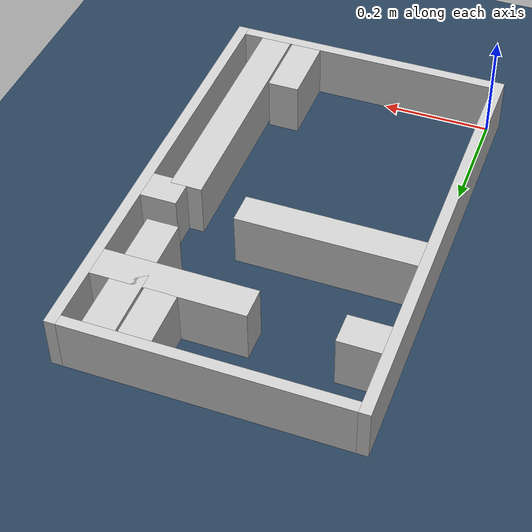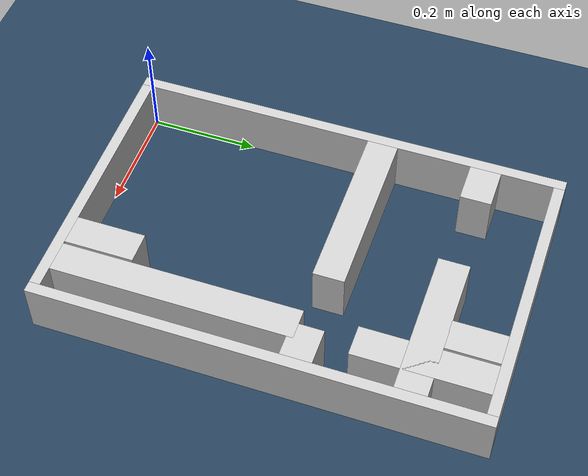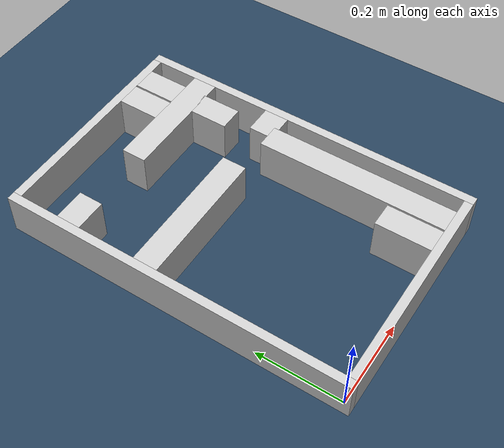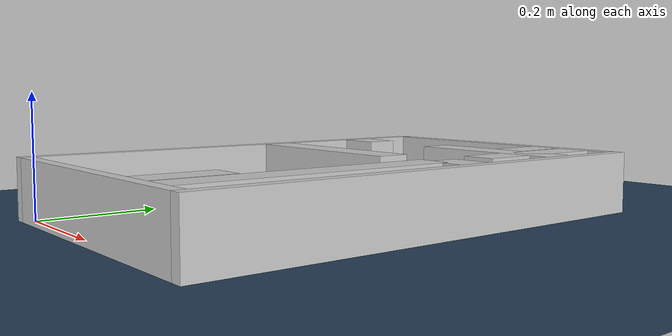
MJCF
<?xml version="1.0" ?>
<mujoco model="generated_real_template">
  <compiler angle="degree"/>
  <option timestep="0.002" integrator="implicitfast" iterations="100" cone="elliptic"/>
  <default>
    <geom density="1"/>
  </default>
  <asset>
    <texture builtin="gradient" height="3072" rgb1="0.3 0.5 0.7" rgb2="0 0 0" type="skybox" width="512"/>
    <texture builtin="checker" height="300" mark="edge" markrgb="0.8 0.8 0.8" name="groundplane" rgb1="0.2 0.3 0.4" rgb2="0.1 0.2 0.3" type="2d" width="300"/>
    <material name="groundplane" reflectance="0.2" texrepeat="5 5" texture="groundplane" texuniform="true"/>
  </asset>
  <worldbody>
    <light dir="0 0 -1" directional="true" pos="0 0 1.5"/>
    <geom name="floor" type="plane" condim="4" friction="0.5 0.005 0.001" material="groundplane" size="0 0 0.05"/>
    <body name="walls">
      <geom name="wall_boundary_left" type="box" condim="4" friction="1.0 0.005 0.0001" rgba="0.8 0.8 0.8 1" pos="-0.010000 0.387500 0.050000" euler="0 0 0.000000" size="0.010000 0.407500 0.050000"/>
      <geom name="wall_boundary_right" type="box" condim="4" friction="1.0 0.005 0.0001" rgba="0.8 0.8 0.8 1" pos="0.500000 0.387500 0.050000" euler="0 0 0.000000" size="0.010000 0.407500 0.050000"/>
      <geom name="wall_boundary_bottom" type="box" condim="4" friction="1.0 0.005 0.0001" rgba="0.8 0.8 0.8 1" pos="0.245000 -0.010000 0.050000" euler="0 0 0.000000" size="0.245000 0.010000 0.050000"/>
      <geom name="wall_boundary_top" type="box" condim="4" friction="1.0 0.005 0.0001" rgba="0.8 0.8 0.8 1" pos="0.245000 0.785000 0.050000" euler="0 0 0.000000" size="0.245000 0.010000 0.050000"/>
      <geom name="wall_inner_1_1" type="box" condim="4" friction="1.0 0.005 0.0001" rgba="0.8 0.8 0.8 1" pos="0.425412 0.219736 0.050000" euler="0 0 90.000000" size="0.219736 0.028500 0.050000"/>
      <geom name="wall_inner_1_2" type="box" condim="4" friction="1.0 0.005 0.0001" rgba="0.8 0.8 0.8 1" pos="0.425412 0.654684 0.050000" euler="0 0 90.000000" size="0.120316 0.028500 0.050000"/>
      <geom name="wall_inner_2_1" type="box" condim="4" friction="1.0 0.005 0.0001" rgba="0.8 0.8 0.8 1" pos="0.364410 0.063725 0.050000" euler="0 0 90.000000" size="0.063725 0.028500 0.050000"/>
      <geom name="wall_inner_2_2" type="box" condim="4" friction="1.0 0.005 0.0001" rgba="0.8 0.8 0.8 1" pos="0.364410 0.726396 0.050000" euler="0 0 90.000000" size="0.048604 0.028500 0.050000"/>
      <geom name="wall_inner_3_1" type="box" condim="4" friction="1.0 0.005 0.0001" rgba="0.8 0.8 0.8 1" pos="0.159622 0.456348 0.050000" euler="0 0 0.000000" size="0.159622 0.028500 0.050000"/>
      <geom name="wall_inner_3_2" type="box" condim="4" friction="1.0 0.005 0.0001" rgba="0.8 0.8 0.8 1" pos="0.457107 0.456348 0.050000" euler="0 0 0.000000" size="0.032893 0.028500 0.050000"/>
      <geom name="wall_inner_4_1" type="box" condim="4" friction="1.0 0.005 0.0001" rgba="0.8 0.8 0.8 1" pos="0.037143 0.650210 0.050000" euler="0 0 0.000000" size="0.037143 0.028500 0.050000"/>
      <geom name="wall_inner_4_2" type="box" condim="4" friction="1.0 0.005 0.0001" rgba="0.8 0.8 0.8 1" pos="0.354341 0.650210 0.050000" euler="0 0 0.000000" size="0.135659 0.028500 0.050000"/>
    </body>
  </worldbody>
</mujoco>
